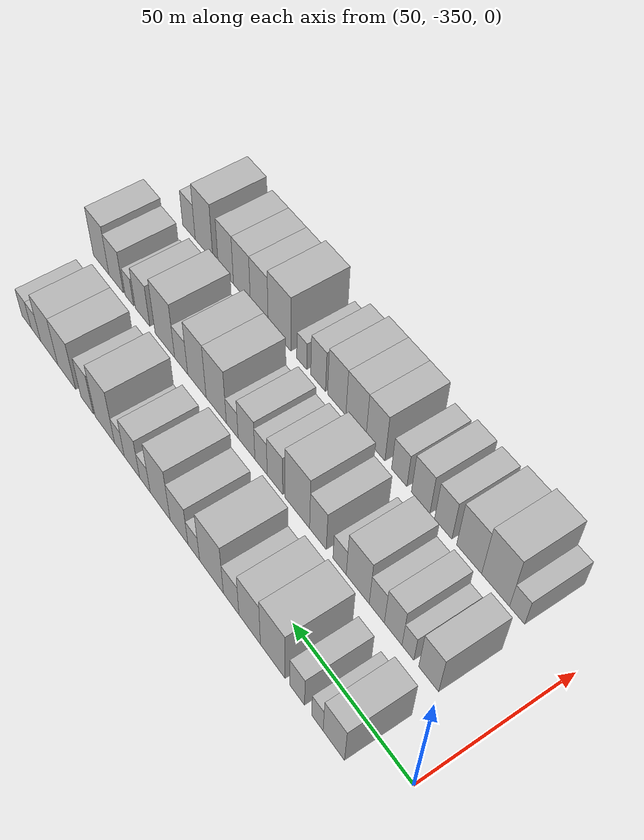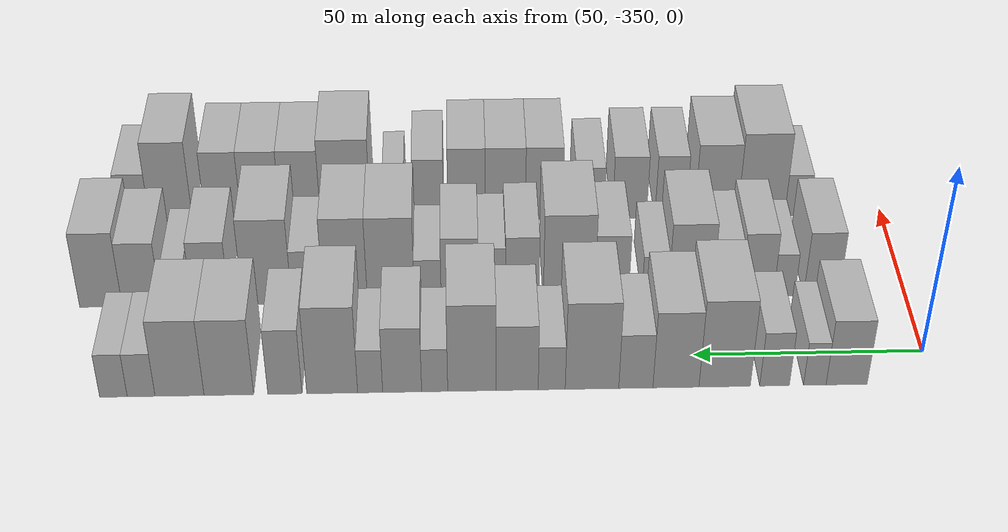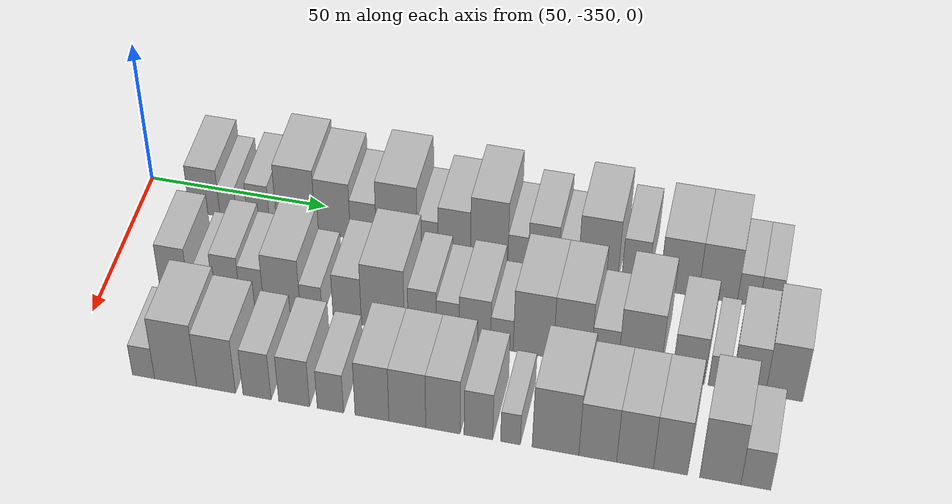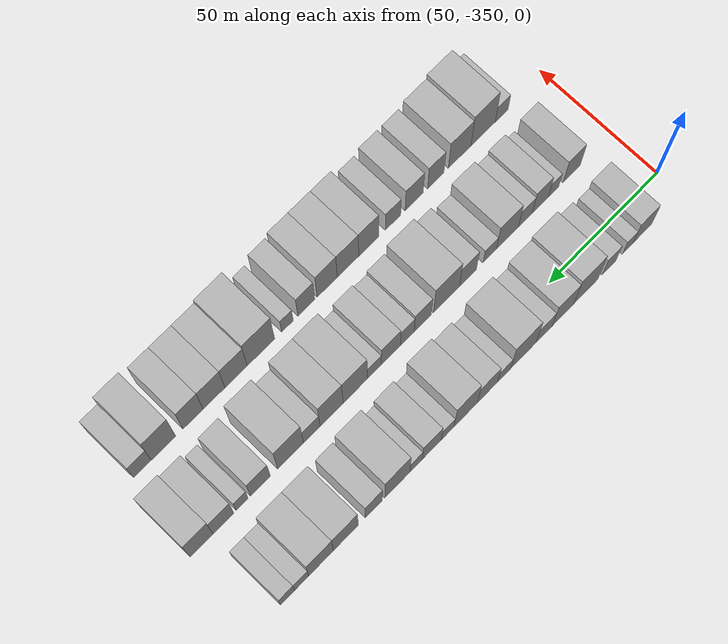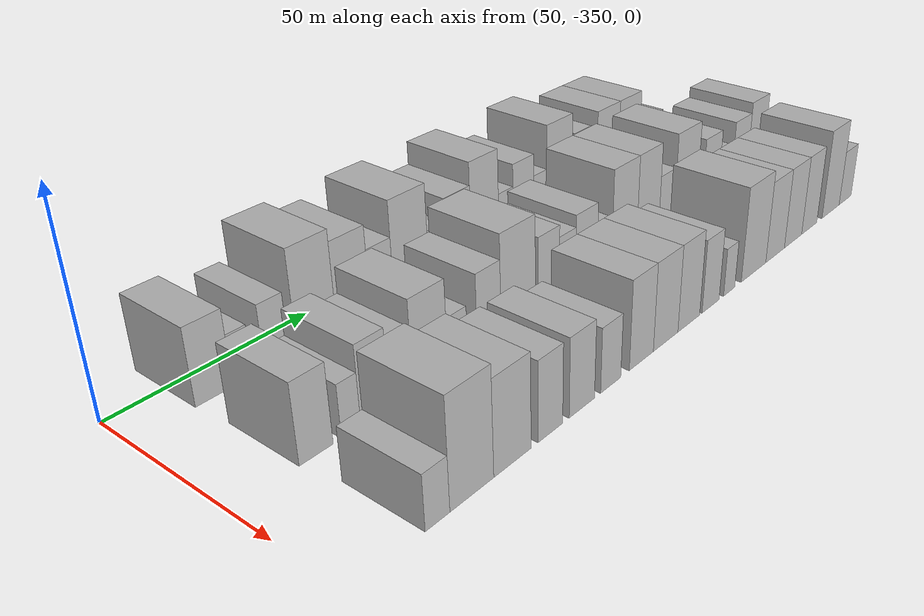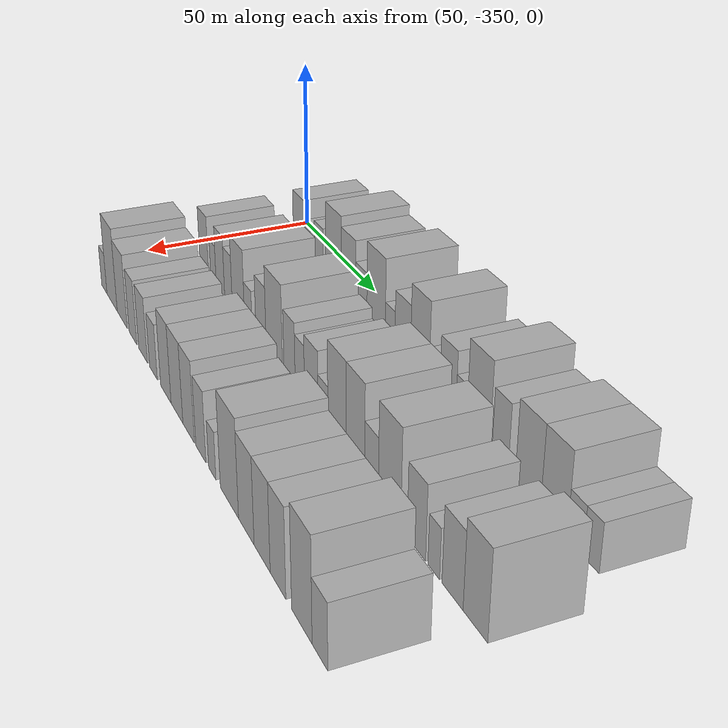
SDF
<sdf version="1.6">
 <world name="default">
  <model name="building_1">
   <static>1</static>
   <pose>50.0000 -331.6068 0 0.000000 0.000000 0.000000</pose>
   <link name="link">
    <pose>0 0 9.00 0 0 0</pose>
    <collision name="collision"><geometry><box><size>20.0000 8.7864 18.0000</size></box></geometry></collision>
    <visual name="visual">
     <cast_shadows>0</cast_shadows>
     <geometry><box><size>20.0000 8.7864 18.0000</size></box></geometry>
     <material>
      <script>
       <uri>model://HANNAS_wall/materials/scripts</uri>
       <uri>model://HANNAS_wall/materials/textures</uri>
       <name>vrc/HANNAS_wall</name>
      </script>
     </material>
    </visual>
   </link>
  </model>
  <model name="building_2">
   <static>1</static>
   <pose>50.0000 -324.7997 0 0.000000 0.000000 0.000000</pose>
   <link name="link">
    <pose>0 0 6.00 0 0 0</pose>
    <collision name="collision"><geometry><box><size>20.0000 4.8279 12.0000</size></box></geometry></collision>
    <visual name="visual">
     <cast_shadows>0</cast_shadows>
     <geometry><box><size>20.0000 4.8279 12.0000</size></box></geometry>
     <material>
      <script>
       <uri>model://HANNAS_wall/materials/scripts</uri>
       <uri>model://HANNAS_wall/materials/textures</uri>
       <name>vrc/HANNAS_wall</name>
      </script>
     </material>
    </visual>
   </link>
  </model>
  <model name="building_3">
   <static>1</static>
   <pose>50.0000 -316.2116 0 0.000000 0.000000 0.000000</pose>
   <link name="link">
    <pose>0 0 7.50 0 0 0</pose>
    <collision name="collision"><geometry><box><size>20.0000 6.3482 15.0000</size></box></geometry></collision>
    <visual name="visual">
     <cast_shadows>0</cast_shadows>
     <geometry><box><size>20.0000 6.3482 15.0000</size></box></geometry>
     <material>
      <script>
       <uri>model://HANNAS_wall/materials/scripts</uri>
       <uri>model://HANNAS_wall/materials/textures</uri>
       <name>vrc/HANNAS_wall</name>
      </script>
     </material>
    </visual>
   </link>
  </model>
  <model name="building_4">
   <static>1</static>
   <pose>50.0000 -305.5548 0 0.000000 0.000000 0.000000</pose>
   <link name="link">
    <pose>0 0 12.00 0 0 0</pose>
    <collision name="collision"><geometry><box><size>20.0000 10.9654 24.0000</size></box></geometry></collision>
    <visual name="visual">
     <cast_shadows>0</cast_shadows>
     <geometry><box><size>20.0000 10.9654 24.0000</size></box></geometry>
     <material>
      <script>
       <uri>model://HANNAS_wall/materials/scripts</uri>
       <uri>model://HANNAS_wall/materials/textures</uri>
       <name>vrc/HANNAS_wall</name>
      </script>
     </material>
    </visual>
   </link>
  </model>
  <model name="building_5">
   <static>1</static>
   <pose>50.0000 -295.1670 0 0.000000 0.000000 0.000000</pose>
   <link name="link">
    <pose>0 0 10.50 0 0 0</pose>
    <collision name="collision"><geometry><box><size>20.0000 9.8102 21.0000</size></box></geometry></collision>
    <visual name="visual">
     <cast_shadows>0</cast_shadows>
     <geometry><box><size>20.0000 9.8102 21.0000</size></box></geometry>
     <material>
      <script>
       <uri>model://HANNAS_wall/materials/scripts</uri>
       <uri>model://HANNAS_wall/materials/textures</uri>
       <name>vrc/HANNAS_wall</name>
      </script>
     </material>
    </visual>
   </link>
  </model>
  <model name="building_6">
   <static>1</static>
   <pose>50.0000 -286.6234 0 0.000000 0.000000 0.000000</pose>
   <link name="link">
    <pose>0 0 7.50 0 0 0</pose>
    <collision name="collision"><geometry><box><size>20.0000 7.2769 15.0000</size></box></geometry></collision>
    <visual name="visual">
     <cast_shadows>0</cast_shadows>
     <geometry><box><size>20.0000 7.2769 15.0000</size></box></geometry>
     <material>
      <script>
       <uri>model://HANNAS_wall/materials/scripts</uri>
       <uri>model://HANNAS_wall/materials/textures</uri>
       <name>vrc/HANNAS_wall</name>
      </script>
     </material>
    </visual>
   </link>
  </model>
  <model name="building_7">
   <static>1</static>
   <pose>50.0000 -277.2917 0 0.000000 0.000000 0.000000</pose>
   <link name="link">
    <pose>0 0 12.00 0 0 0</pose>
    <collision name="collision"><geometry><box><size>20.0000 11.3866 24.0000</size></box></geometry></collision>
    <visual name="visual">
     <cast_shadows>0</cast_shadows>
     <geometry><box><size>20.0000 11.3866 24.0000</size></box></geometry>
     <material>
      <script>
       <uri>model://HANNAS_wall/materials/scripts</uri>
       <uri>model://HANNAS_wall/materials/textures</uri>
       <name>vrc/HANNAS_wall</name>
      </script>
     </material>
    </visual>
   </link>
  </model>
  <model name="building_8">
   <static>1</static>
   <pose>50.0000 -268.7223 0 0.000000 0.000000 0.000000</pose>
   <link name="link">
    <pose>0 0 6.00 0 0 0</pose>
    <collision name="collision"><geometry><box><size>20.0000 5.7520 12.0000</size></box></geometry></collision>
    <visual name="visual">
     <cast_shadows>0</cast_shadows>
     <geometry><box><size>20.0000 5.7520 12.0000</size></box></geometry>
     <material>
      <script>
       <uri>model://HANNAS_wall/materials/scripts</uri>
       <uri>model://HANNAS_wall/materials/textures</uri>
       <name>vrc/HANNAS_wall</name>
      </script>
     </material>
    </visual>
   </link>
  </model>
  <model name="building_9">
   <static>1</static>
   <pose>50.0000 -261.3780 0 0.000000 0.000000 0.000000</pose>
   <link name="link">
    <pose>0 0 9.00 0 0 0</pose>
    <collision name="collision"><geometry><box><size>20.0000 8.9367 18.0000</size></box></geometry></collision>
    <visual name="visual">
     <cast_shadows>0</cast_shadows>
     <geometry><box><size>20.0000 8.9367 18.0000</size></box></geometry>
     <material>
      <script>
       <uri>model://HANNAS_wall/materials/scripts</uri>
       <uri>model://HANNAS_wall/materials/textures</uri>
       <name>vrc/HANNAS_wall</name>
      </script>
     </material>
    </visual>
   </link>
  </model>
  <model name="building_10">
   <static>1</static>
   <pose>50.0000 -251.7813 0 0.000000 0.000000 0.000000</pose>
   <link name="link">
    <pose>0 0 12.00 0 0 0</pose>
    <collision name="collision"><geometry><box><size>20.0000 10.2565 24.0000</size></box></geometry></collision>
    <visual name="visual">
     <cast_shadows>0</cast_shadows>
     <geometry><box><size>20.0000 10.2565 24.0000</size></box></geometry>
     <material>
      <script>
       <uri>model://HANNAS_wall/materials/scripts</uri>
       <uri>model://HANNAS_wall/materials/textures</uri>
       <name>vrc/HANNAS_wall</name>
      </script>
     </material>
    </visual>
   </link>
  </model>
  <model name="building_11">
   <static>1</static>
   <pose>50.0000 -243.8855 0 0.000000 0.000000 0.000000</pose>
   <link name="link">
    <pose>0 0 6.00 0 0 0</pose>
    <collision name="collision"><geometry><box><size>20.0000 5.5351 12.0000</size></box></geometry></collision>
    <visual name="visual">
     <cast_shadows>0</cast_shadows>
     <geometry><box><size>20.0000 5.5351 12.0000</size></box></geometry>
     <material>
      <script>
       <uri>model://HANNAS_wall/materials/scripts</uri>
       <uri>model://HANNAS_wall/materials/textures</uri>
       <name>vrc/HANNAS_wall</name>
      </script>
     </material>
    </visual>
   </link>
  </model>
  <model name="building_12">
   <static>1</static>
   <pose>50.0000 -236.9930 0 0.000000 0.000000 0.000000</pose>
   <link name="link">
    <pose>0 0 9.00 0 0 0</pose>
    <collision name="collision"><geometry><box><size>20.0000 8.2500 18.0000</size></box></geometry></collision>
    <visual name="visual">
     <cast_shadows>0</cast_shadows>
     <geometry><box><size>20.0000 8.2500 18.0000</size></box></geometry>
     <material>
      <script>
       <uri>model://HANNAS_wall/materials/scripts</uri>
       <uri>model://HANNAS_wall/materials/textures</uri>
       <name>vrc/HANNAS_wall</name>
      </script>
     </material>
    </visual>
   </link>
  </model>
  <model name="building_13">
   <static>1</static>
   <pose>50.0000 -230.2157 0 0.000000 0.000000 0.000000</pose>
   <link name="link">
    <pose>0 0 6.00 0 0 0</pose>
    <collision name="collision"><geometry><box><size>20.0000 5.3045 12.0000</size></box></geometry></collision>
    <visual name="visual">
     <cast_shadows>0</cast_shadows>
     <geometry><box><size>20.0000 5.3045 12.0000</size></box></geometry>
     <material>
      <script>
       <uri>model://HANNAS_wall/materials/scripts</uri>
       <uri>model://HANNAS_wall/materials/textures</uri>
       <name>vrc/HANNAS_wall</name>
      </script>
     </material>
    </visual>
   </link>
  </model>
  <model name="building_14">
   <static>1</static>
   <pose>50.0000 -222.1826 0 0.000000 0.000000 0.000000</pose>
   <link name="link">
    <pose>0 0 12.00 0 0 0</pose>
    <collision name="collision"><geometry><box><size>20.0000 10.7617 24.0000</size></box></geometry></collision>
    <visual name="visual">
     <cast_shadows>0</cast_shadows>
     <geometry><box><size>20.0000 10.7617 24.0000</size></box></geometry>
     <material>
      <script>
       <uri>model://HANNAS_wall/materials/scripts</uri>
       <uri>model://HANNAS_wall/materials/textures</uri>
       <name>vrc/HANNAS_wall</name>
      </script>
     </material>
    </visual>
   </link>
  </model>
  <model name="building_15">
   <static>1</static>
   <pose>50.0000 -212.1876 0 0.000000 0.000000 0.000000</pose>
   <link name="link">
    <pose>0 0 9.00 0 0 0</pose>
    <collision name="collision"><geometry><box><size>20.0000 7.2282 18.0000</size></box></geometry></collision>
    <visual name="visual">
     <cast_shadows>0</cast_shadows>
     <geometry><box><size>20.0000 7.2282 18.0000</size></box></geometry>
     <material>
      <script>
       <uri>model://HANNAS_wall/materials/scripts</uri>
       <uri>model://HANNAS_wall/materials/textures</uri>
       <name>vrc/HANNAS_wall</name>
      </script>
     </material>
    </visual>
   </link>
  </model>
  <model name="building_16">
   <static>1</static>
   <pose>50.0000 -200.3378 0 0.000000 0.000000 0.000000</pose>
   <link name="link">
    <pose>0 0 10.50 0 0 0</pose>
    <collision name="collision"><geometry><box><size>20.0000 10.4713 21.0000</size></box></geometry></collision>
    <visual name="visual">
     <cast_shadows>0</cast_shadows>
     <geometry><box><size>20.0000 10.4713 21.0000</size></box></geometry>
     <material>
      <script>
       <uri>model://HANNAS_wall/materials/scripts</uri>
       <uri>model://HANNAS_wall/materials/textures</uri>
       <name>vrc/HANNAS_wall</name>
      </script>
     </material>
    </visual>
   </link>
  </model>
  <model name="building_17">
   <static>1</static>
   <pose>50.0000 -189.9298 0 0.000000 0.000000 0.000000</pose>
   <link name="link">
    <pose>0 0 10.50 0 0 0</pose>
    <collision name="collision"><geometry><box><size>20.0000 10.3448 21.0000</size></box></geometry></collision>
    <visual name="visual">
     <cast_shadows>0</cast_shadows>
     <geometry><box><size>20.0000 10.3448 21.0000</size></box></geometry>
     <material>
      <script>
       <uri>model://HANNAS_wall/materials/scripts</uri>
       <uri>model://HANNAS_wall/materials/textures</uri>
       <name>vrc/HANNAS_wall</name>
      </script>
     </material>
    </visual>
   </link>
  </model>
  <model name="building_18">
   <static>1</static>
   <pose>50.0000 -181.8283 0 0.000000 0.000000 0.000000</pose>
   <link name="link">
    <pose>0 0 6.00 0 0 0</pose>
    <collision name="collision"><geometry><box><size>20.0000 5.8581 12.0000</size></box></geometry></collision>
    <visual name="visual">
     <cast_shadows>0</cast_shadows>
     <geometry><box><size>20.0000 5.8581 12.0000</size></box></geometry>
     <material>
      <script>
       <uri>model://HANNAS_wall/materials/scripts</uri>
       <uri>model://HANNAS_wall/materials/textures</uri>
       <name>vrc/HANNAS_wall</name>
      </script>
     </material>
    </visual>
   </link>
  </model>
  <model name="building_19">
   <static>1</static>
   <pose>50.0000 -175.9938 0 0.000000 0.000000 0.000000</pose>
   <link name="link">
    <pose>0 0 6.00 0 0 0</pose>
    <collision name="collision"><geometry><box><size>20.0000 5.8110 12.0000</size></box></geometry></collision>
    <visual name="visual">
     <cast_shadows>0</cast_shadows>
     <geometry><box><size>20.0000 5.8110 12.0000</size></box></geometry>
     <material>
      <script>
       <uri>model://HANNAS_wall/materials/scripts</uri>
       <uri>model://HANNAS_wall/materials/textures</uri>
       <name>vrc/HANNAS_wall</name>
      </script>
     </material>
    </visual>
   </link>
  </model>
  <model name="building_76">
   <static>1</static>
   <pose>79.0000 -330.9991 0 0.000000 0.000000 0.000000</pose>
   <link name="link">
    <pose>0 0 9.00 0 0 0</pose>
    <collision name="collision"><geometry><box><size>20.0000 8.0018 18.0000</size></box></geometry></collision>
    <visual name="visual">
     <cast_shadows>0</cast_shadows>
     <geometry><box><size>20.0000 8.0018 18.0000</size></box></geometry>
     <material>
      <script>
       <uri>model://HANNAS_wall/materials/scripts</uri>
       <uri>model://HANNAS_wall/materials/textures</uri>
       <name>vrc/HANNAS_wall</name>
      </script>
     </material>
    </visual>
   </link>
  </model>
  <model name="building_77">
   <static>1</static>
   <pose>79.0000 -322.5808 0 0.000000 0.000000 0.000000</pose>
   <link name="link">
    <pose>0 0 6.00 0 0 0</pose>
    <collision name="collision"><geometry><box><size>20.0000 4.8347 12.0000</size></box></geometry></collision>
    <visual name="visual">
     <cast_shadows>0</cast_shadows>
     <geometry><box><size>20.0000 4.8347 12.0000</size></box></geometry>
     <material>
      <script>
       <uri>model://HANNAS_wall/materials/scripts</uri>
       <uri>model://HANNAS_wall/materials/textures</uri>
       <name>vrc/HANNAS_wall</name>
      </script>
     </material>
    </visual>
   </link>
  </model>
  <model name="building_78">
   <static>1</static>
   <pose>79.0000 -316.4812 0 0.000000 0.000000 0.000000</pose>
   <link name="link">
    <pose>0 0 9.00 0 0 0</pose>
    <collision name="collision"><geometry><box><size>20.0000 7.3645 18.0000</size></box></geometry></collision>
    <visual name="visual">
     <cast_shadows>0</cast_shadows>
     <geometry><box><size>20.0000 7.3645 18.0000</size></box></geometry>
     <material>
      <script>
       <uri>model://HANNAS_wall/materials/scripts</uri>
       <uri>model://HANNAS_wall/materials/textures</uri>
       <name>vrc/HANNAS_wall</name>
      </script>
     </material>
    </visual>
   </link>
  </model>
  <model name="building_79">
   <static>1</static>
   <pose>79.0000 -309.5747 0 0.000000 0.000000 0.000000</pose>
   <link name="link">
    <pose>0 0 7.50 0 0 0</pose>
    <collision name="collision"><geometry><box><size>20.0000 6.4486 15.0000</size></box></geometry></collision>
    <visual name="visual">
     <cast_shadows>0</cast_shadows>
     <geometry><box><size>20.0000 6.4486 15.0000</size></box></geometry>
     <material>
      <script>
       <uri>model://HANNAS_wall/materials/scripts</uri>
       <uri>model://HANNAS_wall/materials/textures</uri>
       <name>vrc/HANNAS_wall</name>
      </script>
     </material>
    </visual>
   </link>
  </model>
  <model name="building_80">
   <static>1</static>
   <pose>79.0000 -301.3494 0 0.000000 0.000000 0.000000</pose>
   <link name="link">
    <pose>0 0 10.50 0 0 0</pose>
    <collision name="collision"><geometry><box><size>20.0000 10.0021 21.0000</size></box></geometry></collision>
    <visual name="visual">
     <cast_shadows>0</cast_shadows>
     <geometry><box><size>20.0000 10.0021 21.0000</size></box></geometry>
     <material>
      <script>
       <uri>model://HANNAS_wall/materials/scripts</uri>
       <uri>model://HANNAS_wall/materials/textures</uri>
       <name>vrc/HANNAS_wall</name>
      </script>
     </material>
    </visual>
   </link>
  </model>
  <model name="building_81">
   <static>1</static>
   <pose>79.0000 -293.3911 0 0.000000 0.000000 0.000000</pose>
   <link name="link">
    <pose>0 0 6.00 0 0 0</pose>
    <collision name="collision"><geometry><box><size>20.0000 5.9143 12.0000</size></box></geometry></collision>
    <visual name="visual">
     <cast_shadows>0</cast_shadows>
     <geometry><box><size>20.0000 5.9143 12.0000</size></box></geometry>
     <material>
      <script>
       <uri>model://HANNAS_wall/materials/scripts</uri>
       <uri>model://HANNAS_wall/materials/textures</uri>
       <name>vrc/HANNAS_wall</name>
      </script>
     </material>
    </visual>
   </link>
  </model>
  <model name="building_82">
   <static>1</static>
   <pose>79.0000 -283.6262 0 0.000000 0.000000 0.000000</pose>
   <link name="link">
    <pose>0 0 9.00 0 0 0</pose>
    <collision name="collision"><geometry><box><size>20.0000 7.6156 18.0000</size></box></geometry></collision>
    <visual name="visual">
     <cast_shadows>0</cast_shadows>
     <geometry><box><size>20.0000 7.6156 18.0000</size></box></geometry>
     <material>
      <script>
       <uri>model://HANNAS_wall/materials/scripts</uri>
       <uri>model://HANNAS_wall/materials/textures</uri>
       <name>vrc/HANNAS_wall</name>
      </script>
     </material>
    </visual>
   </link>
  </model>
  <model name="building_83">
   <static>1</static>
   <pose>79.0000 -274.0324 0 0.000000 0.000000 0.000000</pose>
   <link name="link">
    <pose>0 0 12.00 0 0 0</pose>
    <collision name="collision"><geometry><box><size>20.0000 11.5720 24.0000</size></box></geometry></collision>
    <visual name="visual">
     <cast_shadows>0</cast_shadows>
     <geometry><box><size>20.0000 11.5720 24.0000</size></box></geometry>
     <material>
      <script>
       <uri>model://HANNAS_wall/materials/scripts</uri>
       <uri>model://HANNAS_wall/materials/textures</uri>
       <name>vrc/HANNAS_wall</name>
      </script>
     </material>
    </visual>
   </link>
  </model>
  <model name="building_84">
   <static>1</static>
   <pose>79.0000 -263.4843 0 0.000000 0.000000 0.000000</pose>
   <link name="link">
    <pose>0 0 9.00 0 0 0</pose>
    <collision name="collision"><geometry><box><size>20.0000 7.5241 18.0000</size></box></geometry></collision>
    <visual name="visual">
     <cast_shadows>0</cast_shadows>
     <geometry><box><size>20.0000 7.5241 18.0000</size></box></geometry>
     <material>
      <script>
       <uri>model://HANNAS_wall/materials/scripts</uri>
       <uri>model://HANNAS_wall/materials/textures</uri>
       <name>vrc/HANNAS_wall</name>
      </script>
     </material>
    </visual>
   </link>
  </model>
  <model name="building_85">
   <static>1</static>
   <pose>79.0000 -256.6973 0 0.000000 0.000000 0.000000</pose>
   <link name="link">
    <pose>0 0 7.50 0 0 0</pose>
    <collision name="collision"><geometry><box><size>20.0000 6.0500 15.0000</size></box></geometry></collision>
    <visual name="visual">
     <cast_shadows>0</cast_shadows>
     <geometry><box><size>20.0000 6.0500 15.0000</size></box></geometry>
     <material>
      <script>
       <uri>model://HANNAS_wall/materials/scripts</uri>
       <uri>model://HANNAS_wall/materials/textures</uri>
       <name>vrc/HANNAS_wall</name>
      </script>
     </material>
    </visual>
   </link>
  </model>
  <model name="building_86">
   <static>1</static>
   <pose>79.0000 -249.4897 0 0.000000 0.000000 0.000000</pose>
   <link name="link">
    <pose>0 0 9.00 0 0 0</pose>
    <collision name="collision"><geometry><box><size>20.0000 8.3651 18.0000</size></box></geometry></collision>
    <visual name="visual">
     <cast_shadows>0</cast_shadows>
     <geometry><box><size>20.0000 8.3651 18.0000</size></box></geometry>
     <material>
      <script>
       <uri>model://HANNAS_wall/materials/scripts</uri>
       <uri>model://HANNAS_wall/materials/textures</uri>
       <name>vrc/HANNAS_wall</name>
      </script>
     </material>
    </visual>
   </link>
  </model>
  <model name="building_87">
   <static>1</static>
   <pose>79.0000 -242.3172 0 0.000000 0.000000 0.000000</pose>
   <link name="link">
    <pose>0 0 6.00 0 0 0</pose>
    <collision name="collision"><geometry><box><size>20.0000 5.9799 12.0000</size></box></geometry></collision>
    <visual name="visual">
     <cast_shadows>0</cast_shadows>
     <geometry><box><size>20.0000 5.9799 12.0000</size></box></geometry>
     <material>
      <script>
       <uri>model://HANNAS_wall/materials/scripts</uri>
       <uri>model://HANNAS_wall/materials/textures</uri>
       <name>vrc/HANNAS_wall</name>
      </script>
     </material>
    </visual>
   </link>
  </model>
  <model name="building_88">
   <static>1</static>
   <pose>79.0000 -234.0533 0 0.000000 0.000000 0.000000</pose>
   <link name="link">
    <pose>0 0 12.00 0 0 0</pose>
    <collision name="collision"><geometry><box><size>20.0000 10.5480 24.0000</size></box></geometry></collision>
    <visual name="visual">
     <cast_shadows>0</cast_shadows>
     <geometry><box><size>20.0000 10.5480 24.0000</size></box></geometry>
     <material>
      <script>
       <uri>model://HANNAS_wall/materials/scripts</uri>
       <uri>model://HANNAS_wall/materials/textures</uri>
       <name>vrc/HANNAS_wall</name>
      </script>
     </material>
    </visual>
   </link>
  </model>
  <model name="building_89">
   <static>1</static>
   <pose>79.0000 -223.8552 0 0.000000 0.000000 0.000000</pose>
   <link name="link">
    <pose>0 0 12.00 0 0 0</pose>
    <collision name="collision"><geometry><box><size>20.0000 9.8482 24.0000</size></box></geometry></collision>
    <visual name="visual">
     <cast_shadows>0</cast_shadows>
     <geometry><box><size>20.0000 9.8482 24.0000</size></box></geometry>
     <material>
      <script>
       <uri>model://HANNAS_wall/materials/scripts</uri>
       <uri>model://HANNAS_wall/materials/textures</uri>
       <name>vrc/HANNAS_wall</name>
      </script>
     </material>
    </visual>
   </link>
  </model>
  <model name="building_90">
   <static>1</static>
   <pose>79.0000 -215.3906 0 0.000000 0.000000 0.000000</pose>
   <link name="link">
    <pose>0 0 7.50 0 0 0</pose>
    <collision name="collision"><geometry><box><size>20.0000 7.0810 15.0000</size></box></geometry></collision>
    <visual name="visual">
     <cast_shadows>0</cast_shadows>
     <geometry><box><size>20.0000 7.0810 15.0000</size></box></geometry>
     <material>
      <script>
       <uri>model://HANNAS_wall/materials/scripts</uri>
       <uri>model://HANNAS_wall/materials/textures</uri>
       <name>vrc/HANNAS_wall</name>
      </script>
     </material>
    </visual>
   </link>
  </model>
  <model name="building_91">
   <static>1</static>
   <pose>79.0000 -206.3717 0 0.000000 0.000000 0.000000</pose>
   <link name="link">
    <pose>0 0 12.00 0 0 0</pose>
    <collision name="collision"><geometry><box><size>20.0000 10.9567 24.0000</size></box></geometry></collision>
    <visual name="visual">
     <cast_shadows>0</cast_shadows>
     <geometry><box><size>20.0000 10.9567 24.0000</size></box></geometry>
     <material>
      <script>
       <uri>model://HANNAS_wall/materials/scripts</uri>
       <uri>model://HANNAS_wall/materials/textures</uri>
       <name>vrc/HANNAS_wall</name>
      </script>
     </material>
    </visual>
   </link>
  </model>
  <model name="building_92">
   <static>1</static>
   <pose>79.0000 -193.7227 0 0.000000 0.000000 0.000000</pose>
   <link name="link">
    <pose>0 0 9.00 0 0 0</pose>
    <collision name="collision"><geometry><box><size>20.0000 8.3415 18.0000</size></box></geometry></collision>
    <visual name="visual">
     <cast_shadows>0</cast_shadows>
     <geometry><box><size>20.0000 8.3415 18.0000</size></box></geometry>
     <material>
      <script>
       <uri>model://HANNAS_wall/materials/scripts</uri>
       <uri>model://HANNAS_wall/materials/textures</uri>
       <name>vrc/HANNAS_wall</name>
      </script>
     </material>
    </visual>
   </link>
  </model>
  <model name="building_93">
   <static>1</static>
   <pose>79.0000 -186.0486 0 0.000000 0.000000 0.000000</pose>
   <link name="link">
    <pose>0 0 6.00 0 0 0</pose>
    <collision name="collision"><geometry><box><size>20.0000 5.0067 12.0000</size></box></geometry></collision>
    <visual name="visual">
     <cast_shadows>0</cast_shadows>
     <geometry><box><size>20.0000 5.0067 12.0000</size></box></geometry>
     <material>
      <script>
       <uri>model://HANNAS_wall/materials/scripts</uri>
       <uri>model://HANNAS_wall/materials/textures</uri>
       <name>vrc/HANNAS_wall</name>
      </script>
     </material>
    </visual>
   </link>
  </model>
  <model name="building_94">
   <static>1</static>
   <pose>79.0000 -178.2414 0 0.000000 0.000000 0.000000</pose>
   <link name="link">
    <pose>0 0 9.00 0 0 0</pose>
    <collision name="collision"><geometry><box><size>20.0000 8.6076 18.0000</size></box></geometry></collision>
    <visual name="visual">
     <cast_shadows>0</cast_shadows>
     <geometry><box><size>20.0000 8.6076 18.0000</size></box></geometry>
     <material>
      <script>
       <uri>model://HANNAS_wall/materials/scripts</uri>
       <uri>model://HANNAS_wall/materials/textures</uri>
       <name>vrc/HANNAS_wall</name>
      </script>
     </material>
    </visual>
   </link>
  </model>
  <model name="building_95">
   <static>1</static>
   <pose>79.0000 -169.1924 0 0.000000 0.000000 0.000000</pose>
   <link name="link">
    <pose>0 0 10.50 0 0 0</pose>
    <collision name="collision"><geometry><box><size>20.0000 9.4906 21.0000</size></box></geometry></collision>
    <visual name="visual">
     <cast_shadows>0</cast_shadows>
     <geometry><box><size>20.0000 9.4906 21.0000</size></box></geometry>
     <material>
      <script>
       <uri>model://HANNAS_wall/materials/scripts</uri>
       <uri>model://HANNAS_wall/materials/textures</uri>
       <name>vrc/HANNAS_wall</name>
      </script>
     </material>
    </visual>
   </link>
  </model>
  <model name="building_151">
   <static>1</static>
   <pose>108.0000 -330.0265 0 0.000000 0.000000 0.000000</pose>
   <link name="link">
    <pose>0 0 6.00 0 0 0</pose>
    <collision name="collision"><geometry><box><size>20.0000 5.9470 12.0000</size></box></geometry></collision>
    <visual name="visual">
     <cast_shadows>0</cast_shadows>
     <geometry><box><size>20.0000 5.9470 12.0000</size></box></geometry>
     <material>
      <script>
       <uri>model://HANNAS_wall/materials/scripts</uri>
       <uri>model://HANNAS_wall/materials/textures</uri>
       <name>vrc/HANNAS_wall</name>
      </script>
     </material>
    </visual>
   </link>
  </model>
  <model name="building_152">
   <static>1</static>
   <pose>108.0000 -321.4334 0 0.000000 0.000000 0.000000</pose>
   <link name="link">
    <pose>0 0 12.00 0 0 0</pose>
    <collision name="collision"><geometry><box><size>20.0000 11.2392 24.0000</size></box></geometry></collision>
    <visual name="visual">
     <cast_shadows>0</cast_shadows>
     <geometry><box><size>20.0000 11.2392 24.0000</size></box></geometry>
     <material>
      <script>
       <uri>model://HANNAS_wall/materials/scripts</uri>
       <uri>model://HANNAS_wall/materials/textures</uri>
       <name>vrc/HANNAS_wall</name>
      </script>
     </material>
    </visual>
   </link>
  </model>
  <model name="building_153">
   <static>1</static>
   <pose>108.0000 -310.6524 0 0.000000 0.000000 0.000000</pose>
   <link name="link">
    <pose>0 0 10.50 0 0 0</pose>
    <collision name="collision"><geometry><box><size>20.0000 10.3228 21.0000</size></box></geometry></collision>
    <visual name="visual">
     <cast_shadows>0</cast_shadows>
     <geometry><box><size>20.0000 10.3228 21.0000</size></box></geometry>
     <material>
      <script>
       <uri>model://HANNAS_wall/materials/scripts</uri>
       <uri>model://HANNAS_wall/materials/textures</uri>
       <name>vrc/HANNAS_wall</name>
      </script>
     </material>
    </visual>
   </link>
  </model>
  <model name="building_154">
   <static>1</static>
   <pose>108.0000 -299.7897 0 0.000000 0.000000 0.000000</pose>
   <link name="link">
    <pose>0 0 9.00 0 0 0</pose>
    <collision name="collision"><geometry><box><size>20.0000 7.4026 18.0000</size></box></geometry></collision>
    <visual name="visual">
     <cast_shadows>0</cast_shadows>
     <geometry><box><size>20.0000 7.4026 18.0000</size></box></geometry>
     <material>
      <script>
       <uri>model://HANNAS_wall/materials/scripts</uri>
       <uri>model://HANNAS_wall/materials/textures</uri>
       <name>vrc/HANNAS_wall</name>
      </script>
     </material>
    </visual>
   </link>
  </model>
  <model name="building_155">
   <static>1</static>
   <pose>108.0000 -290.0331 0 0.000000 0.000000 0.000000</pose>
   <link name="link">
    <pose>0 0 9.00 0 0 0</pose>
    <collision name="collision"><geometry><box><size>20.0000 8.1105 18.0000</size></box></geometry></collision>
    <visual name="visual">
     <cast_shadows>0</cast_shadows>
     <geometry><box><size>20.0000 8.1105 18.0000</size></box></geometry>
     <material>
      <script>
       <uri>model://HANNAS_wall/materials/scripts</uri>
       <uri>model://HANNAS_wall/materials/textures</uri>
       <name>vrc/HANNAS_wall</name>
      </script>
     </material>
    </visual>
   </link>
  </model>
  <model name="building_156">
   <static>1</static>
   <pose>108.0000 -280.5435 0 0.000000 0.000000 0.000000</pose>
   <link name="link">
    <pose>0 0 7.50 0 0 0</pose>
    <collision name="collision"><geometry><box><size>20.0000 6.8686 15.0000</size></box></geometry></collision>
    <visual name="visual">
     <cast_shadows>0</cast_shadows>
     <geometry><box><size>20.0000 6.8686 15.0000</size></box></geometry>
     <material>
      <script>
       <uri>model://HANNAS_wall/materials/scripts</uri>
       <uri>model://HANNAS_wall/materials/textures</uri>
       <name>vrc/HANNAS_wall</name>
      </script>
     </material>
    </visual>
   </link>
  </model>
  <model name="building_157">
   <static>1</static>
   <pose>108.0000 -269.7170 0 0.000000 0.000000 0.000000</pose>
   <link name="link">
    <pose>0 0 10.50 0 0 0</pose>
    <collision name="collision"><geometry><box><size>20.0000 8.7844 21.0000</size></box></geometry></collision>
    <visual name="visual">
     <cast_shadows>0</cast_shadows>
     <geometry><box><size>20.0000 8.7844 21.0000</size></box></geometry>
     <material>
      <script>
       <uri>model://HANNAS_wall/materials/scripts</uri>
       <uri>model://HANNAS_wall/materials/textures</uri>
       <name>vrc/HANNAS_wall</name>
      </script>
     </material>
    </visual>
   </link>
  </model>
  <model name="building_158">
   <static>1</static>
   <pose>108.0000 -260.5851 0 0.000000 0.000000 0.000000</pose>
   <link name="link">
    <pose>0 0 10.50 0 0 0</pose>
    <collision name="collision"><geometry><box><size>20.0000 9.4796 21.0000</size></box></geometry></collision>
    <visual name="visual">
     <cast_shadows>0</cast_shadows>
     <geometry><box><size>20.0000 9.4796 21.0000</size></box></geometry>
     <material>
      <script>
       <uri>model://HANNAS_wall/materials/scripts</uri>
       <uri>model://HANNAS_wall/materials/textures</uri>
       <name>vrc/HANNAS_wall</name>
      </script>
     </material>
    </visual>
   </link>
  </model>
  <model name="building_159">
   <static>1</static>
   <pose>108.0000 -251.4182 0 0.000000 0.000000 0.000000</pose>
   <link name="link">
    <pose>0 0 10.50 0 0 0</pose>
    <collision name="collision"><geometry><box><size>20.0000 8.8542 21.0000</size></box></geometry></collision>
    <visual name="visual">
     <cast_shadows>0</cast_shadows>
     <geometry><box><size>20.0000 8.8542 21.0000</size></box></geometry>
     <material>
      <script>
       <uri>model://HANNAS_wall/materials/scripts</uri>
       <uri>model://HANNAS_wall/materials/textures</uri>
       <name>vrc/HANNAS_wall</name>
      </script>
     </material>
    </visual>
   </link>
  </model>
  <model name="building_160">
   <static>1</static>
   <pose>108.0000 -242.3347 0 0.000000 0.000000 0.000000</pose>
   <link name="link">
    <pose>0 0 9.00 0 0 0</pose>
    <collision name="collision"><geometry><box><size>20.0000 7.3128 18.0000</size></box></geometry></collision>
    <visual name="visual">
     <cast_shadows>0</cast_shadows>
     <geometry><box><size>20.0000 7.3128 18.0000</size></box></geometry>
     <material>
      <script>
       <uri>model://HANNAS_wall/materials/scripts</uri>
       <uri>model://HANNAS_wall/materials/textures</uri>
       <name>vrc/HANNAS_wall</name>
      </script>
     </material>
    </visual>
   </link>
  </model>
  <model name="building_161">
   <static>1</static>
   <pose>108.0000 -234.1637 0 0.000000 0.000000 0.000000</pose>
   <link name="link">
    <pose>0 0 6.00 0 0 0</pose>
    <collision name="collision"><geometry><box><size>20.0000 5.0293 12.0000</size></box></geometry></collision>
    <visual name="visual">
     <cast_shadows>0</cast_shadows>
     <geometry><box><size>20.0000 5.0293 12.0000</size></box></geometry>
     <material>
      <script>
       <uri>model://HANNAS_wall/materials/scripts</uri>
       <uri>model://HANNAS_wall/materials/textures</uri>
       <name>vrc/HANNAS_wall</name>
      </script>
     </material>
    </visual>
   </link>
  </model>
  <model name="building_162">
   <static>1</static>
   <pose>108.0000 -222.7541 0 0.000000 0.000000 0.000000</pose>
   <link name="link">
    <pose>0 0 12.00 0 0 0</pose>
    <collision name="collision"><geometry><box><size>20.0000 11.7898 24.0000</size></box></geometry></collision>
    <visual name="visual">
     <cast_shadows>0</cast_shadows>
     <geometry><box><size>20.0000 11.7898 24.0000</size></box></geometry>
     <material>
      <script>
       <uri>model://HANNAS_wall/materials/scripts</uri>
       <uri>model://HANNAS_wall/materials/textures</uri>
       <name>vrc/HANNAS_wall</name>
      </script>
     </material>
    </visual>
   </link>
  </model>
  <model name="building_163">
   <static>1</static>
   <pose>108.0000 -212.1204 0 0.000000 0.000000 0.000000</pose>
   <link name="link">
    <pose>0 0 10.50 0 0 0</pose>
    <collision name="collision"><geometry><box><size>20.0000 9.4776 21.0000</size></box></geometry></collision>
    <visual name="visual">
     <cast_shadows>0</cast_shadows>
     <geometry><box><size>20.0000 9.4776 21.0000</size></box></geometry>
     <material>
      <script>
       <uri>model://HANNAS_wall/materials/scripts</uri>
       <uri>model://HANNAS_wall/materials/textures</uri>
       <name>vrc/HANNAS_wall</name>
      </script>
     </material>
    </visual>
   </link>
  </model>
  <model name="building_164">
   <static>1</static>
   <pose>108.0000 -202.7797 0 0.000000 0.000000 0.000000</pose>
   <link name="link">
    <pose>0 0 10.50 0 0 0</pose>
    <collision name="collision"><geometry><box><size>20.0000 9.2038 21.0000</size></box></geometry></collision>
    <visual name="visual">
     <cast_shadows>0</cast_shadows>
     <geometry><box><size>20.0000 9.2038 21.0000</size></box></geometry>
     <material>
      <script>
       <uri>model://HANNAS_wall/materials/scripts</uri>
       <uri>model://HANNAS_wall/materials/textures</uri>
       <name>vrc/HANNAS_wall</name>
      </script>
     </material>
    </visual>
   </link>
  </model>
  <model name="building_165">
   <static>1</static>
   <pose>108.0000 -193.9456 0 0.000000 0.000000 0.000000</pose>
   <link name="link">
    <pose>0 0 10.50 0 0 0</pose>
    <collision name="collision"><geometry><box><size>20.0000 8.4644 21.0000</size></box></geometry></collision>
    <visual name="visual">
     <cast_shadows>0</cast_shadows>
     <geometry><box><size>20.0000 8.4644 21.0000</size></box></geometry>
     <material>
      <script>
       <uri>model://HANNAS_wall/materials/scripts</uri>
       <uri>model://HANNAS_wall/materials/textures</uri>
       <name>vrc/HANNAS_wall</name>
      </script>
     </material>
    </visual>
   </link>
  </model>
  <model name="building_166">
   <static>1</static>
   <pose>108.0000 -181.6306 0 0.000000 0.000000 0.000000</pose>
   <link name="link">
    <pose>0 0 12.00 0 0 0</pose>
    <collision name="collision"><geometry><box><size>20.0000 10.1655 24.0000</size></box></geometry></collision>
    <visual name="visual">
     <cast_shadows>0</cast_shadows>
     <geometry><box><size>20.0000 10.1655 24.0000</size></box></geometry>
     <material>
      <script>
       <uri>model://HANNAS_wall/materials/scripts</uri>
       <uri>model://HANNAS_wall/materials/textures</uri>
       <name>vrc/HANNAS_wall</name>
      </script>
     </material>
    </visual>
   </link>
  </model>
  <model name="building_167">
   <static>1</static>
   <pose>108.0000 -172.8674 0 0.000000 0.000000 0.000000</pose>
   <link name="link">
    <pose>0 0 7.50 0 0 0</pose>
    <collision name="collision"><geometry><box><size>20.0000 7.3609 15.0000</size></box></geometry></collision>
    <visual name="visual">
     <cast_shadows>0</cast_shadows>
     <geometry><box><size>20.0000 7.3609 15.0000</size></box></geometry>
     <material>
      <script>
       <uri>model://HANNAS_wall/materials/scripts</uri>
       <uri>model://HANNAS_wall/materials/textures</uri>
       <name>vrc/HANNAS_wall</name>
      </script>
     </material>
    </visual>
   </link>
  </model>
 </world>
</sdf>
